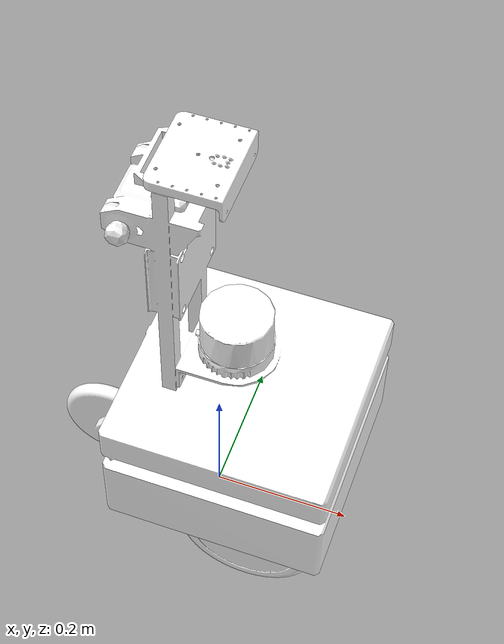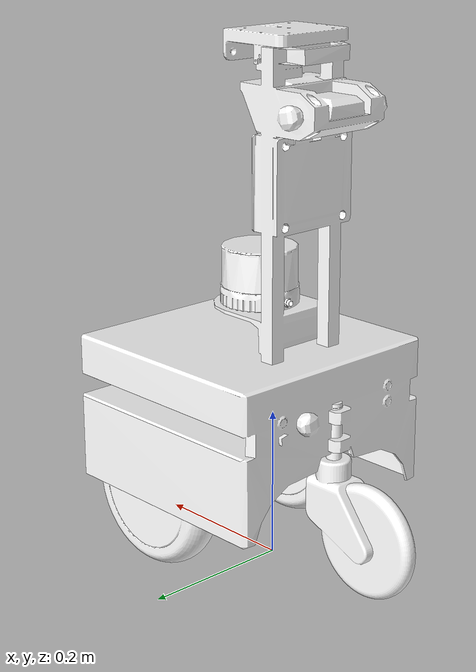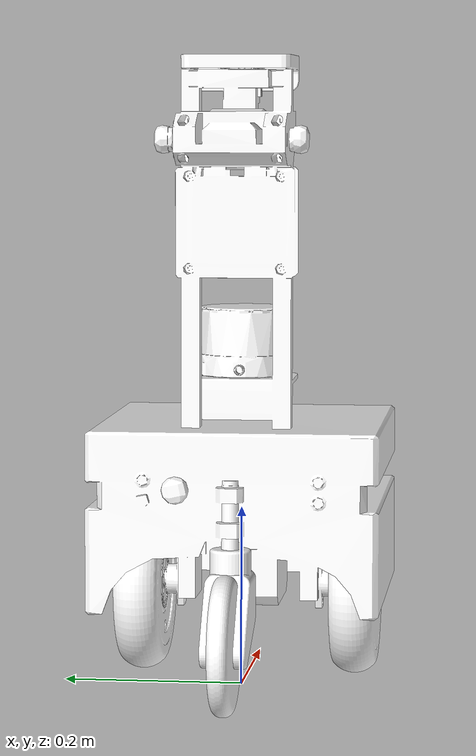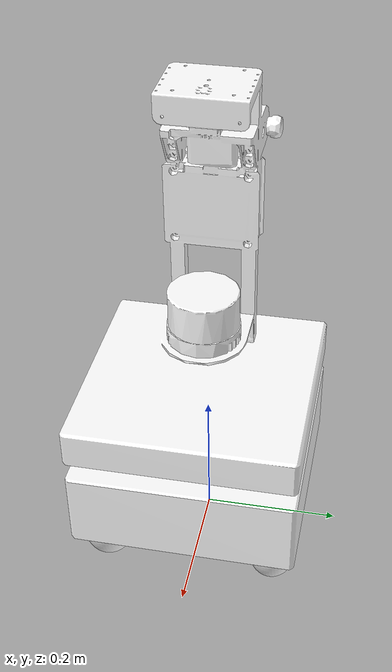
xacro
<?xml version="1.0"?>
<robot name="cub" xmlns:xacro="http://ros.org/wiki/xacro">

  <xacro:include filename="$(find cub_description)/urdf/cub2023_body.xacro" />

  <xacro:cub_body base_link="base_link" base_footprint="base_footprint"/>

</robot>

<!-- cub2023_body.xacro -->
<robot name="cub2023_body" xmlns:xacro="http://ros.org/wiki/xacro">
  <xacro:macro name="cub_body" params="base_link base_footprint">
    <material name="white">
      <color rgba="1.0 1.0 1.0 1.0"/>
    </material>

    <link name="${base_footprint}"/>
    <joint name="base_footprint_joint" type="fixed">
      <origin xyz="0.045 0 0" rpy="0 0 0" />
      <parent link="${base_footprint}" />
      <child link="${base_link}" />
    </joint>

    <link name="${base_link}"/>

    <joint name="body_joint" type="fixed">
      <origin xyz="0 0 0" rpy="0 0 0" />
      <parent link="${base_link}" />
      <child link="body" />
    </joint>
    <link name="body">
      <visual>
        <origin xyz="0 0 0" rpy="0 0 0"/>
        <geometry>
          <mesh filename="package://cub_description/meshes/cub2023_body.stl"/>
        </geometry>
        <material name="white"/>
      </visual>
      <collision>
        <origin xyz="0 0 0" rpy="0 0 0"/>
        <geometry>
          <mesh filename="package://cub_description/meshes/cub2023_body.stl"/>
        </geometry>
      </collision>
      <inertial>
        <mass value="1" />
        <origin xyz="0 0 0" />
        <inertia ixx="0.003881243" ixy="0.0" ixz="0.0"
                 iyy="0.000498940" iyz="0.0"
                 izz="0.003879257" />
      </inertial>
    </link>

    <joint name="wheel_left_joint" type="continuous">
      <origin xyz="0.045 0.1225 0.1025" rpy="${-pi/2} 0 0" />
      <parent link="${base_link}" />
      <child link="wheel_left" />
      <limit effort="1" velocity="1"/>
      <axis xyz="0 0 1"/>
    </joint>
    <transmission name="wheel_left_trans" type="SimpleTransmission">
      <type>transmission_interface/SimpleTransmission</type>
        <actuator name="wheel_left_motor">
          <mechanicalReduction>1</mechanicalReduction>
        </actuator>
      <joint name="wheel_left_joint">
        <hardwareInterface>hardware_interface/VelocityJointInterface</hardwareInterface>
      </joint>
    </transmission>
    <link name="wheel_left">
      <visual>
        <origin xyz="0 0 0" rpy="0 0 0"/>
        <geometry>
          <mesh filename="package://cub_description/meshes/cub2023_wheel.stl"/>
        </geometry>
        <material name="white"/>
      </visual>
      <collision>
        <origin xyz="0 0 0" rpy="0 0 0"/>
        <geometry>
          <cylinder length="0.01" radius="0.1025"/>
        </geometry>
      </collision>
      <inertial>
        <mass value="1" />
        <origin xyz="0 0 0" />
        <inertia ixx="0.003881243" ixy="0.0" ixz="0.0"
                 iyy="0.000498940" iyz="0.0"
                 izz="0.003879257" />
      </inertial>
    </link>
    <gazebo reference="wheel_left">
      <material>Gazebo/Black</material>
      <mu1 value="10" />
      <mu2 value="10" />
      <kp value="10000" />
      <kd value="100" />
    </gazebo>

    <joint name="wheel_right_joint" type="continuous">
      <origin xyz="0.045 -0.1225 0.1025" rpy="${pi/2} 0 0" />
      <parent link="${base_link}" />
      <child link="wheel_right" />
      <limit effort="1" velocity="1"/>
      <axis xyz="0 0 1"/>
    </joint>
    <transmission name="wheel_right_trans" type="SimpleTransmission">
      <type>transmission_interface/SimpleTransmission</type>
        <actuator name="wheel_right_motor">
          <mechanicalReduction>1</mechanicalReduction>
        </actuator>
      <joint name="wheel_right_joint">
        <hardwareInterface>hardware_interface/VelocityJointInterface</hardwareInterface>
      </joint>
    </transmission>
    <link name="wheel_right">
      <visual>
        <origin xyz="0 0 0" rpy="0 0 0"/>
        <geometry>
          <mesh filename="package://cub_description/meshes/cub2023_wheel.stl"/>
        </geometry>
        <material name="white"/>
      </visual>
      <collision>
        <origin xyz="0 0 0" rpy="0 0 0"/>
        <geometry>
          <cylinder length="0.01" radius="0.1025"/>
        </geometry>
      </collision>
      <inertial>
        <mass value="1" />
        <origin xyz="0 0 0" />
        <inertia ixx="0.003881243" ixy="0.0" ixz="0.0"
                 iyy="0.000498940" iyz="0.0"
                 izz="0.003879257" />
      </inertial>
    </link>
    <gazebo reference="wheel_right">
      <material>Gazebo/Black</material>
      <mu1 value="10" />
      <mu2 value="10" />
      <kp value="10000" />
      <kd value="100" />
    </gazebo>

    <joint name="caster_joint" type="continuous">
      <origin xyz="-0.156 0.0 0.0" rpy="0 0 0" />
      <parent link="${base_link}" />
      <child link="caster" />
      <limit effort="1" velocity="1"/>
      <axis xyz="0 0 1"/>
    </joint>
    <link name="caster">
      <visual>
        <origin xyz="0 0 0" rpy="0 0 0"/>
        <geometry>
          <mesh filename="package://cub_description/meshes/cub2023_caster.stl"/>
        </geometry>
        <material name="white"/>
      </visual>
      <collision>
        <origin xyz="0 0 0" rpy="0 0 0"/>
        <geometry>
          <mesh filename="package://cub_description/meshes/cub2023_caster.stl"/>
        </geometry>
      </collision>
      <inertial>
        <mass value="1" />
        <origin xyz="0 0 0" />
        <inertia ixx="0.003881243" ixy="0.0" ixz="0.0"
                 iyy="0.000498940" iyz="0.0"
                 izz="0.003879257" />
      </inertial>
    </link>

    <joint name="head_joint" type="revolute">
      <origin xyz="-0.03989 0.0 0.66" rpy="0 0 0" />
      <parent link="${base_link}" />
      <child link="head" />
      <limit effort="1" velocity="1" lower="0" upper="${pi/2}"/>
      <axis xyz="0 1 0"/>
    </joint>
    <transmission name="head_trans" type="SimpleTransmission">
      <type>transmission_interface/SimpleTransmission</type>
        <actuator name="head_motor">
          <mechanicalReduction>1</mechanicalReduction>
        </actuator>
      <joint name="head_joint">
        <hardwareInterface>hardware_interface/PositionJointInterface</hardwareInterface>
      </joint>
    </transmission>
    <link name="head">
      <visual>
        <origin xyz="0 0 0" rpy="0 0 0"/>
        <geometry>
          <mesh filename="package://cub_description/meshes/cub2023_head.stl"/>
        </geometry>
        <material name="white"/>
      </visual>
      <collision>
        <origin xyz="-0.05 0 0.04" rpy="0 0 0"/>
        <geometry>
          <box size="0.1 0.1 0.02"/>
        </geometry>
      </collision>
      <inertial>
        <mass value="1" />
        <origin xyz="0 0 0" />
        <inertia ixx="0.003881243" ixy="0.0" ixz="0.0"
                 iyy="0.000498940" iyz="0.0"
                 izz="0.003879257" />
      </inertial>
    </link>
    <gazebo reference="head">
      <material>Gazebo/White</material>
    </gazebo>

    <joint name="hokuyo_joint" type="fixed">
      <origin xyz="0.0 0.0 0.2342" rpy="0 0 0" />
      <parent link="${base_link}" />
      <child link="hokuyo" />
    </joint>
    <link name="hokuyo">
      <visual>
        <origin xyz="0 0 0" rpy="0 0 0"/>
        <geometry>
          <mesh filename="package://cub_description/meshes/cub2023_hokuyo.stl"/>
        </geometry>
        <material name="white"/>
      </visual>
    </link>
    <gazebo reference="hokuyo">
      <material>Gazebo/Black</material>
    </gazebo>

    <joint name="hesai_joint" type="fixed">
      <origin xyz="-0.02 0.0 0.3947" rpy="0 0 0" />
      <parent link="${base_link}" />
      <child link="hesai" />
    </joint>
    <link name="hesai">
      <visual>
        <origin xyz="0 0 0" rpy="0 0 0"/>
        <geometry>
          <mesh filename="package://cub_description/meshes/cub2023_hesai.stl"/>
        </geometry>
        <material name="white"/>
      </visual>
    </link>
    <gazebo reference="hesai">
      <material>Gazebo/White</material>
    </gazebo>

  <gazebo>
    <plugin name="gazebo_ros_control" filename="libgazebo_ros_control.so">
      <robotNamespace>/cub</robotNamespace>
      <robotSimType>gazebo_ros_control/DefaultRobotHWSim</robotSimType>
      <legacyModeNS>true</legacyModeNS>
    </plugin>
  </gazebo>

  </xacro:macro>
</robot>
